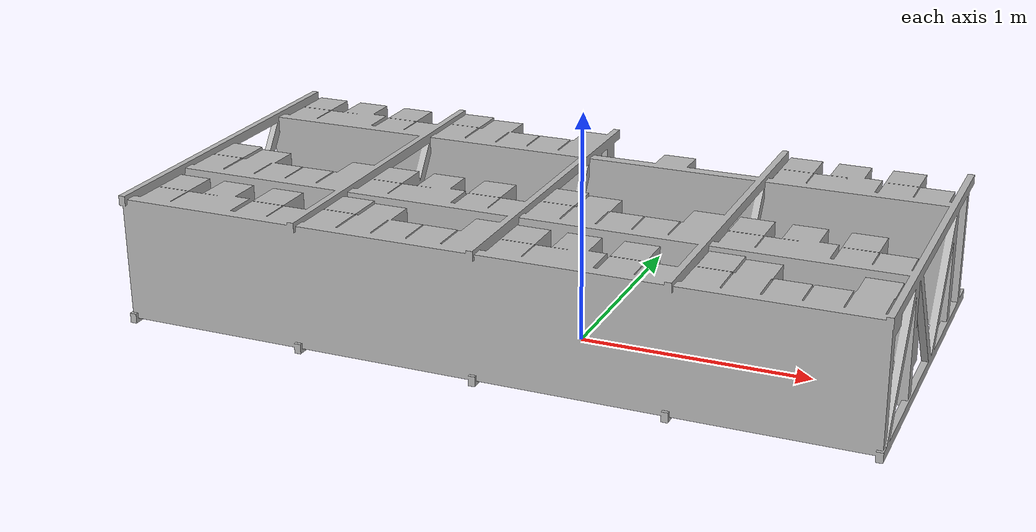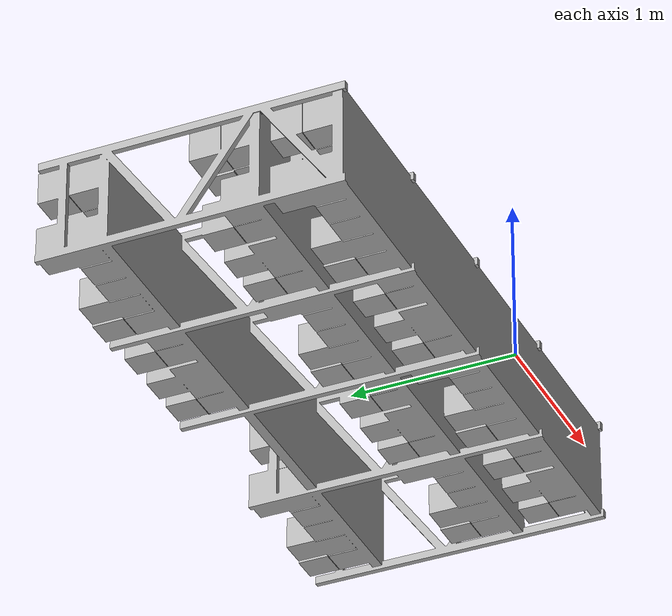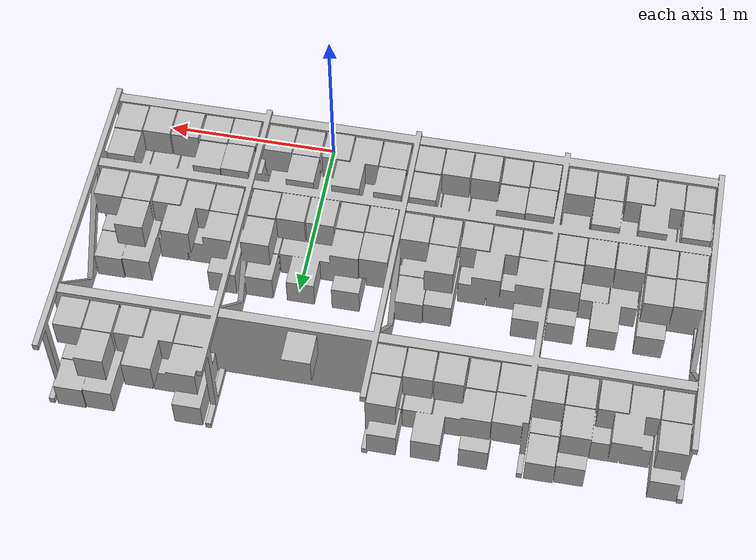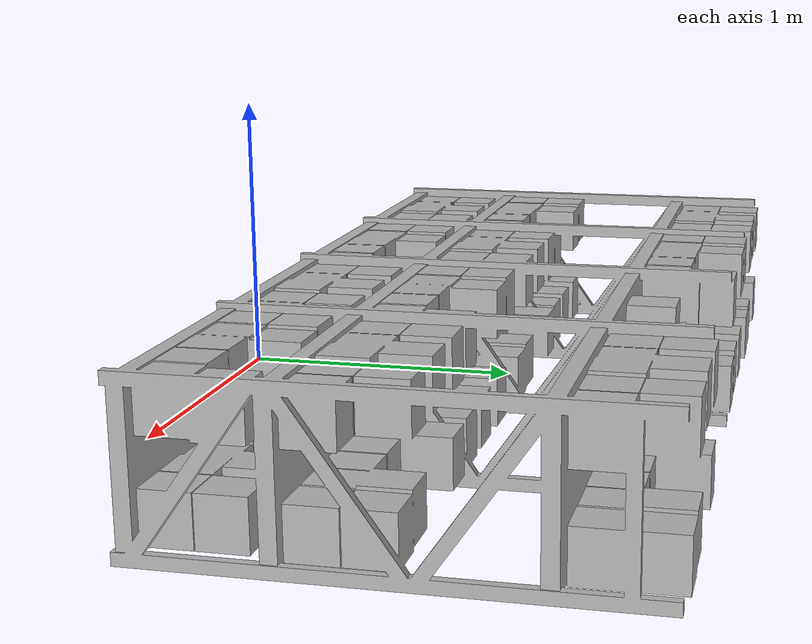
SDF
<sdf version="1.7">
    <model name="shelf">
        <pose>0 0 0 0 0 0</pose>
        <self_collide>true</self_collide>

        <link name="shelf_base">
            <pose>-0.5 0 0 0 0 0</pose>
            <collision name="shelf_chassi_collision">
                <pose>0 0 0.9 0 0 0</pose>
                <geometry>
                    <box>
                        <size>3.6 0.6 1.8</size>
                    </box>
                </geometry>
            </collision>
            <visual name="shelf_chassi_visual">
                <pose>0 0 0 0 0 0</pose>
                <geometry>
                    <mesh>
                        <scale>0.2 0.3 0.3</scale>
                        <uri>meshes/shelf_big_movai.obj</uri>
                    </mesh>
                </geometry>
            </visual>
        </link>
        <static>1</static>
    </model>
</sdf>
